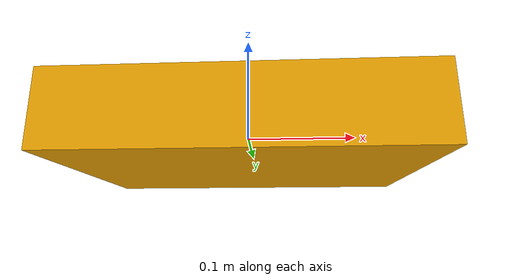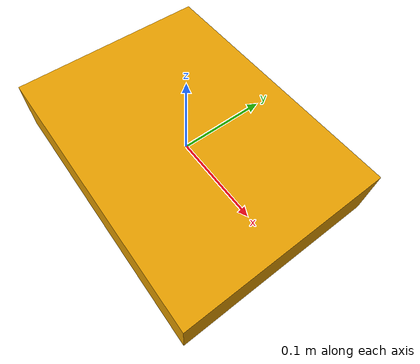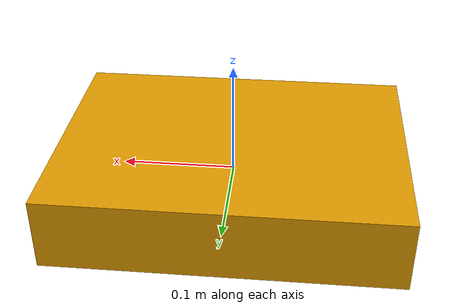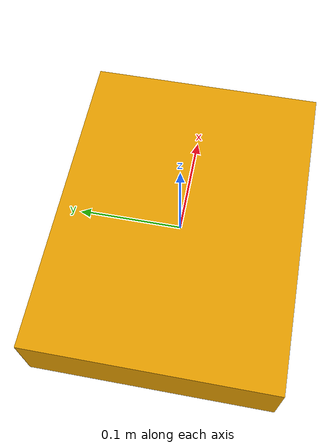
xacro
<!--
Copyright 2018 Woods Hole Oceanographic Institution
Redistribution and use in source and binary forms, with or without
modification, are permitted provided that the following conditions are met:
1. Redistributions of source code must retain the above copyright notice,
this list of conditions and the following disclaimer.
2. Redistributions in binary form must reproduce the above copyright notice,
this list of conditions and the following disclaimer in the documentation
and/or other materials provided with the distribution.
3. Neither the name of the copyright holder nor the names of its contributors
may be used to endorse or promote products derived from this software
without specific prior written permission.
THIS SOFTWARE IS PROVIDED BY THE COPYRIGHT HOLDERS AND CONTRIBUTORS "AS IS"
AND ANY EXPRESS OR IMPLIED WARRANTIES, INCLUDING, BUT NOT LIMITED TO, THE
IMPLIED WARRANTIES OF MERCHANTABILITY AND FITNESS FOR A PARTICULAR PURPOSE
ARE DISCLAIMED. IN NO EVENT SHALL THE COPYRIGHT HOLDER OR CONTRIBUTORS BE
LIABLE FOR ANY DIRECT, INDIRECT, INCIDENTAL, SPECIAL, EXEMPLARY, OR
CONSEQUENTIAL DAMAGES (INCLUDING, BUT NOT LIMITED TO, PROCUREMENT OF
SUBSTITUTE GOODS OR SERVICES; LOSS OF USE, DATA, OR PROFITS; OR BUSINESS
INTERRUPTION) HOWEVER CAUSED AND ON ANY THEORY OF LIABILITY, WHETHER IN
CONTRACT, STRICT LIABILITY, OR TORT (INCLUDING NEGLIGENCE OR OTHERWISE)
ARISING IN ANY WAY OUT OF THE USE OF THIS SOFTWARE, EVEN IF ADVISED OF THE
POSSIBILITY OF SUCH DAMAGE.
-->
<?xml version="1.0"?>
<robot name="dropweight" xmlns:xacro="http://www.ros.org/wiki/xacro" >

<xacro:arg name="namespace" default="dropweight"/>
<xacro:arg name="debug" default="0"/>
<xacro:property name="plate_x" value="0.3048"/>
<xacro:property name="plate_y" value="0.2286"/>
<xacro:property name="plate_z" value="0.015875"/>
<xacro:property name="plate_num" value="4"/>
<xacro:property name="plate_density" value="7745.9476"/>
<xacro:property name="water_rho" value="1027.3"/>

<xacro:property name="stack_x" value="${plate_x}"/>
<xacro:property name="stack_y" value="${plate_y}"/>
<xacro:property name="stack_z" value="${plate_z*plate_num}"/>
<xacro:property name="stack_v" value="${stack_x*stack_y*stack_z}"/>
<xacro:property name="stack_m" value="${stack_v*plate_density}"/>

<!-- Drag coefficients (mostly made up) -->
<xacro:property name="cd_lin" value="1.0"/>
<xacro:property name="cd_rot" value="100.0"/>

<link name="$(arg namespace)/base_link">
  <inertial>
    <mass value="${stack_m}"/>
    <origin xyz="0 0 0" rpy="0 0 0"/>
    <inertia ixx="${stack_m*(stack_y*stack_y+stack_z*stack_z)/12}" ixy="0" ixz="0"
             iyy="${stack_m*(stack_x*stack_x+stack_z*stack_z)/12}" iyz="0"
             izz="${stack_m*(stack_x*stack_x+stack_y*stack_y)/12}" />
  </inertial>

  <visual>
    <origin xyz="0 0 0" rpy="0 0 0"/>
    <geometry>
      <box size="${stack_x} ${stack_y} ${stack_z}"/>
    </geometry>
  </visual>

  <collision>
    <origin xyz="0 0 0" rpy="0 0 0"/>
    <geometry>
      <box size="${stack_x} ${stack_y} ${stack_z}"/>
    </geometry>
  </collision>

  <gazebo>
    <plugin name="$(arg namespace)_uuv_plugin" filename="libunderwater_object_ros_plugin.so">
    <fluid_density>${water_rho}</fluid_density>
    <debug>$(arg debug)</debug>
    <link name="$(arg namespace)/base_link}">
      <neutrally_buoyant>0</neutrally_buoyant>

      <volume>${stack_v}</volume>

      <box>
        <width>${stack_x}</width>
        <length>${stack_y}</length>
        <height>${stack_z}</height>
      </box>

      <center_of_buoyancy>0 0 0</center_of_buoyancy>

      <hydrodynamic_model>
        <type>fossen</type>
        <added_mass>
        ${stack_m} 0 0 0 0 0
        0 ${stack_m} 0 0 0 0
        0 0 ${stack_m} 0 0 0
        0 0 0 ${stack_m} 0 0
        0 0 0 0 ${stack_m} 0
        0 0 0 0 0 ${stack_m}
        </added_mass>

        <linear_damping>
          ${0.5*water_rho*cd_lin*stack_y*stack_z}
          ${0.5*water_rho*cd_lin*stack_x*stack_z}
          ${0.5*water_rho*cd_lin*stack_x*stack_y}
          ${0.5*water_rho*cd_lin*stack_x*stack_y}
          ${0.5*water_rho*cd_rot*stack_y*stack_x}
          ${0.5*water_rho*cd_rot*stack_z*stack_x}
        </linear_damping>
        <quadratic_damping>
          ${0.5*water_rho*cd_lin*stack_y*stack_z}
          ${0.5*water_rho*cd_lin*stack_x*stack_z}
          ${0.5*water_rho*cd_lin*stack_x*stack_y}
          ${0.5*water_rho*cd_lin*stack_x*stack_y}
          ${0.5*water_rho*cd_rot*stack_y*stack_x}
          ${0.5*water_rho*cd_rot*stack_z*stack_x}
        </quadratic_damping>
      </hydrodynamic_model>
    </link>
    </plugin>
  </gazebo>
</link>

</robot>
